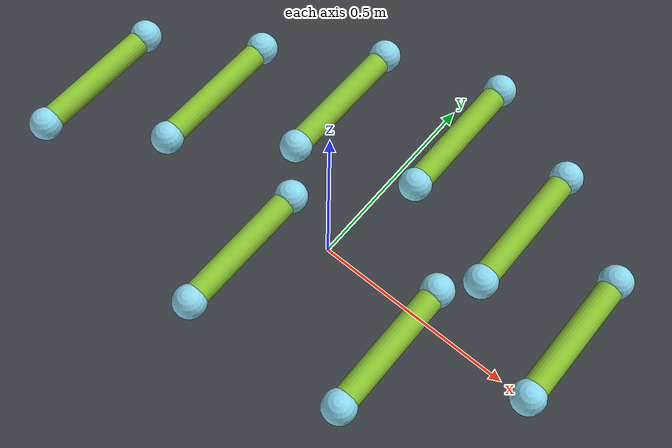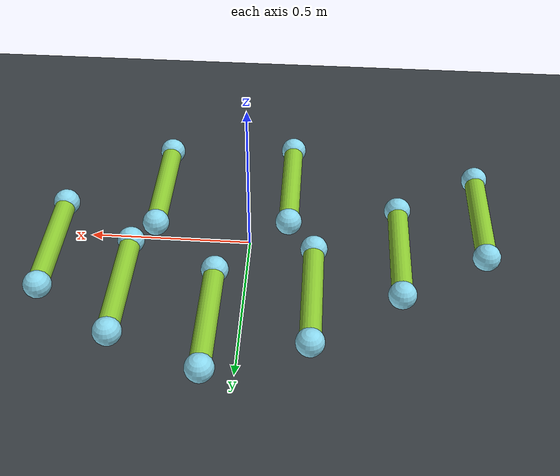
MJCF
<mujoco model="modular_assemblies_8limb">
  <compiler angle="degree"/>
  <option timestep="0.005" gravity="0 0 -9.81" iterations="70" integrator="implicitfast"/>
  <size njmax="900" nconmax="400"/>

  <default>
    <geom friction="1.0 0.08 0.02" solimp="0.95 0.99 0.001" solref="0.002 1"/>
    <site size="0.012" rgba="0.55 0.86 0.95 1"/>
    <equality active="false" solref="0.02 4" solimp="0.9 0.98 0.001"/>
  </default>

  <worldbody>
    <light directional="true" diffuse="0.9 0.9 0.9" specular="0.2 0.2 0.2" pos="0 2.0 1.2" dir="0 -1 -0.2"/>
    <geom name="ground" type="plane" size="5 5 0.1" rgba="0.22 0.24 0.26 1"/>

    <body name="limb0" pos="-0.70 -0.22 0.11">
      <joint type="free" damping="0.8"/>
      <geom type="cylinder" fromto="0 0 0 0 0.34 0" size="0.03" density="750" rgba="0.56 0.80 0.20 1"/>
      <geom type="sphere" pos="0 0 0" size="0.04" density="750" rgba="0.55 0.86 0.95 1"/>
      <geom type="sphere" pos="0 0.34 0" size="0.04" density="750" rgba="0.55 0.86 0.95 1"/>
      <site name="limb0_child" pos="0 0 0"/>
      <site name="limb0_parent" pos="0 0.34 0"/>
    </body>

    <body name="limb1" pos="-0.45 -0.06 0.11">
      <joint type="free" damping="0.8"/>
      <geom type="cylinder" fromto="0 0 0 0 0.34 0" size="0.03" density="750" rgba="0.56 0.80 0.20 1"/>
      <geom type="sphere" pos="0 0 0" size="0.04" density="750" rgba="0.55 0.86 0.95 1"/>
      <geom type="sphere" pos="0 0.34 0" size="0.04" density="750" rgba="0.55 0.86 0.95 1"/>
      <site name="limb1_child" pos="0 0 0"/>
      <site name="limb1_parent" pos="0 0.34 0"/>
    </body>

    <body name="limb2" pos="-0.20 0.12 0.11">
      <joint type="free" damping="0.8"/>
      <geom type="cylinder" fromto="0 0 0 0 0.34 0" size="0.03" density="750" rgba="0.56 0.80 0.20 1"/>
      <geom type="sphere" pos="0 0 0" size="0.04" density="750" rgba="0.55 0.86 0.95 1"/>
      <geom type="sphere" pos="0 0.34 0" size="0.04" density="750" rgba="0.55 0.86 0.95 1"/>
      <site name="limb2_child" pos="0 0 0"/>
      <site name="limb2_parent" pos="0 0.34 0"/>
    </body>

    <body name="limb3" pos="0.08 0.22 0.11">
      <joint type="free" damping="0.8"/>
      <geom type="cylinder" fromto="0 0 0 0 0.34 0" size="0.03" density="750" rgba="0.56 0.80 0.20 1"/>
      <geom type="sphere" pos="0 0 0" size="0.04" density="750" rgba="0.55 0.86 0.95 1"/>
      <geom type="sphere" pos="0 0.34 0" size="0.04" density="750" rgba="0.55 0.86 0.95 1"/>
      <site name="limb3_child" pos="0 0 0"/>
      <site name="limb3_parent" pos="0 0.34 0"/>
    </body>

    <body name="limb4" pos="0.34 0.12 0.11">
      <joint type="free" damping="0.8"/>
      <geom type="cylinder" fromto="0 0 0 0 0.34 0" size="0.03" density="750" rgba="0.56 0.80 0.20 1"/>
      <geom type="sphere" pos="0 0 0" size="0.04" density="750" rgba="0.55 0.86 0.95 1"/>
      <geom type="sphere" pos="0 0.34 0" size="0.04" density="750" rgba="0.55 0.86 0.95 1"/>
      <site name="limb4_child" pos="0 0 0"/>
      <site name="limb4_parent" pos="0 0.34 0"/>
    </body>

    <body name="limb5" pos="0.57 -0.03 0.11">
      <joint type="free" damping="0.8"/>
      <geom type="cylinder" fromto="0 0 0 0 0.34 0" size="0.03" density="750" rgba="0.56 0.80 0.20 1"/>
      <geom type="sphere" pos="0 0 0" size="0.04" density="750" rgba="0.55 0.86 0.95 1"/>
      <geom type="sphere" pos="0 0.34 0" size="0.04" density="750" rgba="0.55 0.86 0.95 1"/>
      <site name="limb5_child" pos="0 0 0"/>
      <site name="limb5_parent" pos="0 0.34 0"/>
    </body>

    <body name="limb6" pos="0.28 -0.30 0.11">
      <joint type="free" damping="0.8"/>
      <geom type="cylinder" fromto="0 0 0 0 0.34 0" size="0.03" density="750" rgba="0.56 0.80 0.20 1"/>
      <geom type="sphere" pos="0 0 0" size="0.04" density="750" rgba="0.55 0.86 0.95 1"/>
      <geom type="sphere" pos="0 0.34 0" size="0.04" density="750" rgba="0.55 0.86 0.95 1"/>
      <site name="limb6_child" pos="0 0 0"/>
      <site name="limb6_parent" pos="0 0.34 0"/>
    </body>

    <body name="limb7" pos="-0.12 -0.33 0.11">
      <joint type="free" damping="0.8"/>
      <geom type="cylinder" fromto="0 0 0 0 0.34 0" size="0.03" density="750" rgba="0.56 0.80 0.20 1"/>
      <geom type="sphere" pos="0 0 0" size="0.04" density="750" rgba="0.55 0.86 0.95 1"/>
      <geom type="sphere" pos="0 0.34 0" size="0.04" density="750" rgba="0.55 0.86 0.95 1"/>
      <site name="limb7_child" pos="0 0 0"/>
      <site name="limb7_parent" pos="0 0.34 0"/>
    </body>
  </worldbody>

  <equality>
    <connect name="conn_0_1" site1="limb0_parent" site2="limb1_child"/>
    <connect name="conn_0_2" site1="limb0_parent" site2="limb2_child"/>
    <connect name="conn_0_3" site1="limb0_parent" site2="limb3_child"/>
    <connect name="conn_0_4" site1="limb0_parent" site2="limb4_child"/>
    <connect name="conn_0_5" site1="limb0_parent" site2="limb5_child"/>
    <connect name="conn_0_6" site1="limb0_parent" site2="limb6_child"/>
    <connect name="conn_0_7" site1="limb0_parent" site2="limb7_child"/>

    <connect name="conn_1_0" site1="limb1_parent" site2="limb0_child"/>
    <connect name="conn_1_2" site1="limb1_parent" site2="limb2_child"/>
    <connect name="conn_1_3" site1="limb1_parent" site2="limb3_child"/>
    <connect name="conn_1_4" site1="limb1_parent" site2="limb4_child"/>
    <connect name="conn_1_5" site1="limb1_parent" site2="limb5_child"/>
    <connect name="conn_1_6" site1="limb1_parent" site2="limb6_child"/>
    <connect name="conn_1_7" site1="limb1_parent" site2="limb7_child"/>

    <connect name="conn_2_0" site1="limb2_parent" site2="limb0_child"/>
    <connect name="conn_2_1" site1="limb2_parent" site2="limb1_child"/>
    <connect name="conn_2_3" site1="limb2_parent" site2="limb3_child"/>
    <connect name="conn_2_4" site1="limb2_parent" site2="limb4_child"/>
    <connect name="conn_2_5" site1="limb2_parent" site2="limb5_child"/>
    <connect name="conn_2_6" site1="limb2_parent" site2="limb6_child"/>
    <connect name="conn_2_7" site1="limb2_parent" site2="limb7_child"/>

    <connect name="conn_3_0" site1="limb3_parent" site2="limb0_child"/>
    <connect name="conn_3_1" site1="limb3_parent" site2="limb1_child"/>
    <connect name="conn_3_2" site1="limb3_parent" site2="limb2_child"/>
    <connect name="conn_3_4" site1="limb3_parent" site2="limb4_child"/>
    <connect name="conn_3_5" site1="limb3_parent" site2="limb5_child"/>
    <connect name="conn_3_6" site1="limb3_parent" site2="limb6_child"/>
    <connect name="conn_3_7" site1="limb3_parent" site2="limb7_child"/>

    <connect name="conn_4_0" site1="limb4_parent" site2="limb0_child"/>
    <connect name="conn_4_1" site1="limb4_parent" site2="limb1_child"/>
    <connect name="conn_4_2" site1="limb4_parent" site2="limb2_child"/>
    <connect name="conn_4_3" site1="limb4_parent" site2="limb3_child"/>
    <connect name="conn_4_5" site1="limb4_parent" site2="limb5_child"/>
    <connect name="conn_4_6" site1="limb4_parent" site2="limb6_child"/>
    <connect name="conn_4_7" site1="limb4_parent" site2="limb7_child"/>

    <connect name="conn_5_0" site1="limb5_parent" site2="limb0_child"/>
    <connect name="conn_5_1" site1="limb5_parent" site2="limb1_child"/>
    <connect name="conn_5_2" site1="limb5_parent" site2="limb2_child"/>
    <connect name="conn_5_3" site1="limb5_parent" site2="limb3_child"/>
    <connect name="conn_5_4" site1="limb5_parent" site2="limb4_child"/>
    <connect name="conn_5_6" site1="limb5_parent" site2="limb6_child"/>
    <connect name="conn_5_7" site1="limb5_parent" site2="limb7_child"/>

    <connect name="conn_6_0" site1="limb6_parent" site2="limb0_child"/>
    <connect name="conn_6_1" site1="limb6_parent" site2="limb1_child"/>
    <connect name="conn_6_2" site1="limb6_parent" site2="limb2_child"/>
    <connect name="conn_6_3" site1="limb6_parent" site2="limb3_child"/>
    <connect name="conn_6_4" site1="limb6_parent" site2="limb4_child"/>
    <connect name="conn_6_5" site1="limb6_parent" site2="limb5_child"/>
    <connect name="conn_6_7" site1="limb6_parent" site2="limb7_child"/>

    <connect name="conn_7_0" site1="limb7_parent" site2="limb0_child"/>
    <connect name="conn_7_1" site1="limb7_parent" site2="limb1_child"/>
    <connect name="conn_7_2" site1="limb7_parent" site2="limb2_child"/>
    <connect name="conn_7_3" site1="limb7_parent" site2="limb3_child"/>
    <connect name="conn_7_4" site1="limb7_parent" site2="limb4_child"/>
    <connect name="conn_7_5" site1="limb7_parent" site2="limb5_child"/>
    <connect name="conn_7_6" site1="limb7_parent" site2="limb6_child"/>
  </equality>
</mujoco>
